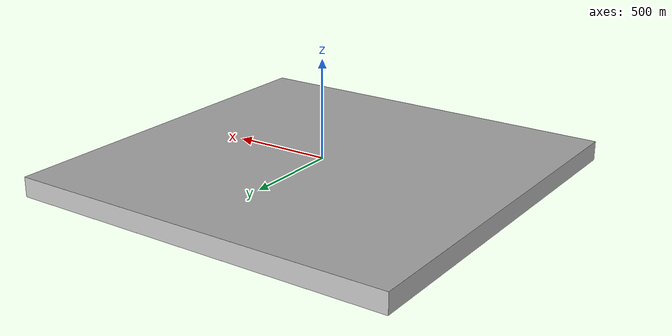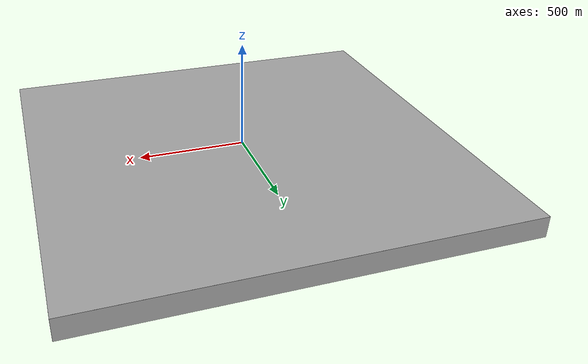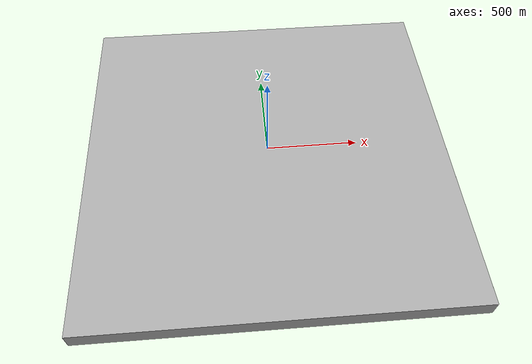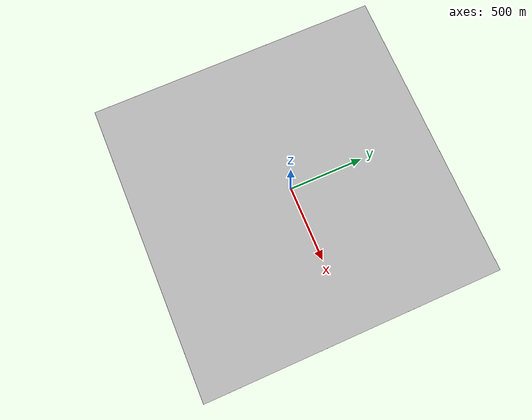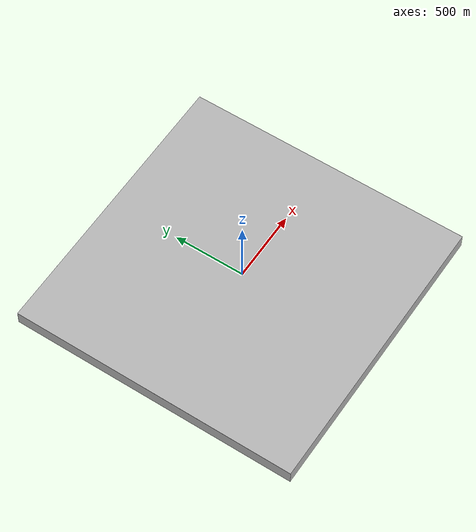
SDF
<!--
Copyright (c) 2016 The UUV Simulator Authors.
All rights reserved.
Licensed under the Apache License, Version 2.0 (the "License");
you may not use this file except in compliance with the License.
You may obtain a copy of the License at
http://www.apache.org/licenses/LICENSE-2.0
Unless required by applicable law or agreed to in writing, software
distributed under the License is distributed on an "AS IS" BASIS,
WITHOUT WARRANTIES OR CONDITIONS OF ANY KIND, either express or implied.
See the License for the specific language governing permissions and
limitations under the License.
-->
<?xml version="1.0" ?>
<sdf version="1.5">
  <world name="robosub">
    <physics name="default_physics" default="true" type="ode">
      <max_step_size>0.002</max_step_size>
      <real_time_factor>1</real_time_factor>
      <real_time_update_rate>500</real_time_update_rate>
      <ode>
        <solver>
          <type>quick</type>
          <iters>50</iters>
          <sor>0.5</sor>
        </solver>
      </ode>
    </physics>
    <scene>
      <ambient>0.01 0.01 0.01 1.0</ambient>
      <sky>
        <clouds>
          <speed>12</speed>
        </clouds>
      </sky>
      <shadows>1</shadows>
      <fog>
        <color>0.1 0.2 0.3 1.0</color>
        <type>linear</type>
        <density>0.001</density>
        <start>10</start>
        <end>200</end>
      </fog>
    </scene>
<!-- ROBOSUB Items Go Here -->
    <include>
      <uri>model://triangle_buoy</uri>
      <pose>0 0 -60 0 0 0</pose>
    </include>
    <include>
      <uri>model://flat_buoy</uri>
      <pose>10 0 -60 0 0 0</pose>
    </include>
<!-- END OF ROBOSUB ITEMS -->

    <!-- Origin placed somewhere in the middle of the North Sea  -->
    <spherical_coordinates>
      <latitude_deg>56.71897669633431</latitude_deg>
      <longitude_deg>3.515625</longitude_deg>
    </spherical_coordinates>

    <!-- Global light source -->
    <include>
      <uri>model://sun</uri>
    </include>

    <!-- Bounding box with sea surface -->
    <include>
      <uri>model://ocean_box</uri>
      <pose>0 0 0 0 0 0</pose>
    </include>

    <plugin name="underwater_current_plugin" filename="libuuv_underwater_current_ros_plugin.so">
      <namespace>hydrodynamics</namespace>
      <constant_current>
        <topic>current_velocity</topic>
        <velocity>
          <mean>0</mean>
          <min>0</min>
          <max>5</max>
          <mu>0.0</mu>
          <noiseAmp>0.0</noiseAmp>
        </velocity>

        <horizontal_angle>
          <mean>0</mean>
          <min>-3.141592653589793238</min>
          <max>3.141592653589793238</max>
          <mu>0.0</mu>
          <noiseAmp>0.0</noiseAmp>
        </horizontal_angle>

        <vertical_angle>
          <mean>0</mean>
          <min>-3.141592653589793238</min>
          <max>3.141592653589793238</max>
          <mu>0.0</mu>
          <noiseAmp>0.0</noiseAmp>
        </vertical_angle>
      </constant_current>
    </plugin>

    <plugin name="sc_interface" filename="libuuv_sc_ros_interface_plugin.so"/>

  </world>
</sdf>

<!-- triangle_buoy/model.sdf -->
<sdf version="1.5">
  <model name="triangle_buoy">
    <static>true</static>
    <link name="link">
      <collision name="triangle_buoy">
        <pose>0 0 0 0 0 0</pose>
        <geometry>
          <mesh>
            <uri>model://triangle_buoy/meshes/triangle_buoy.dae</uri>
            <scale>1.0 1.0 1.0</scale>
          </mesh>
        </geometry>
      </collision>

      <visual name="triangle_buoy">
        <cast_shadows>true</cast_shadows>
        <pose>0 0 0 0 0 0</pose>
        <geometry>
          <mesh>
            <uri>model://triangle_buoy/meshes/triangle_buoy.dae</uri>
            <scale>1.0 1.0 1.0</scale>
          </mesh>
        </geometry>
      </visual>
    </link>
  </model>
</sdf>

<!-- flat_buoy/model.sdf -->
<sdf version="1.5">
  <model name="flat_buoy">
    <static>true</static>
    <link name="link">
      <collision name="flat_buoy">
        <pose>0 0 0 0 0 0</pose>
        <geometry>
          <mesh>
            <uri>model://flat_buoy/meshes/flat_buoy.dae</uri>
            <scale>1.0 1.0 1.0</scale>
          </mesh>
        </geometry>
      </collision>

      <visual name="flat_buoy">
        <cast_shadows>true</cast_shadows>
        <pose>0 0 0 0 0 0</pose>
        <geometry>
          <mesh>
            <uri>model://flat_buoy/meshes/flat_buoy.dae</uri>
            <scale>1.0 1.0 1.0</scale>
          </mesh>
        </geometry>
      </visual>
    </link>
  </model>
</sdf>

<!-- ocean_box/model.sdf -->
<sdf version="1.5">
  <model name="ocean_box">
    <static>true</static>
    <link name="link">
      <visual name="ground">
        <cast_shadows>false</cast_shadows>
        <pose>0 0 -100 0 0 0</pose>
        <geometry>
          <box>
            <size>2000 2000 .1</size>
          </box>
        </geometry>
        <material>
          <script>
            <uri>file://Media/materials/scripts/sand.material</uri>
            <name>UUVSimulator/SandAndStones</name>
          </script>
        </material>
      </visual>

      <collision name="ground">
        <pose>0 0 -100 0 0 0</pose>
        <geometry>
          <box>
            <size>2000 2000 .1</size>
          </box>
        </geometry>
      </collision>

      <visual name="surface">
        <cast_shadows>false</cast_shadows>
        <pose>0 0 0 0 0 0</pose>
        <geometry>
          <box>
            <size>2000 2000 .1</size>
          </box>
        </geometry>
        <material>
          <script>
            <uri>file://Media/materials/scripts/water.material</uri>
            <name>UUVSimulator/StaticDeepWater</name>
          </script>
        </material>
      </visual>

      <visual name="north">
        <cast_shadows>false</cast_shadows>
        <pose>1000 0 -50 0 0 0</pose>
        <geometry>
          <box>
            <size>.1 2000 100</size>
          </box>
        </geometry>
        <material>
          <script>
            <uri>file://Media/materials/scripts/water.material</uri>
            <name>UUVSimulator/SeaWall</name>
          </script>
        </material>
      </visual>

      <visual name="south">
        <cast_shadows>false</cast_shadows>
        <pose>-1000 0 -50 0 0 0</pose>
        <geometry>
          <box>
            <size>.1 2000 100</size>
          </box>
        </geometry>
        <material>
          <script>
            <uri>file://Media/materials/scripts/water.material</uri>
            <name>UUVSimulator/SeaWall</name>
          </script>
        </material>
      </visual>

      <visual name="east">
        <cast_shadows>false</cast_shadows>
        <pose>0 -1000 -50 0 0 0</pose>
        <geometry>
          <box>
            <size>2000 .1 100</size>
          </box>
        </geometry>
        <material>
          <script>
            <uri>file://Media/materials/scripts/water.material</uri>
            <name>UUVSimulator/SeaWall</name>
          </script>
        </material>
      </visual>

      <visual name="west">
        <cast_shadows>false</cast_shadows>
        <pose>0 1000 -50 0 0 0</pose>
        <geometry>
          <box>
            <size>2000 .1 100</size>
          </box>
        </geometry>
        <material>
          <script>
            <uri>file://Media/materials/scripts/water.material</uri>
            <name>UUVSimulator/SeaWall</name>
          </script>
        </material>
      </visual>
    </link>
  </model>
</sdf>
